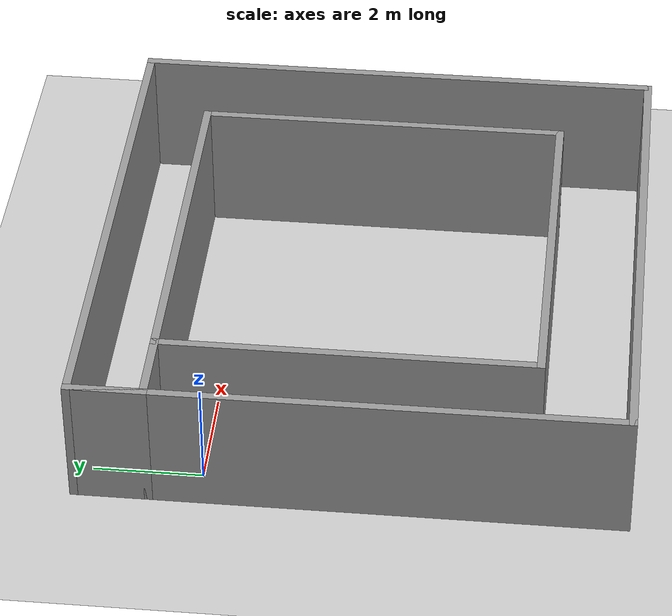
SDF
<sdf version="1.6">
 <world name="default">
  <light name="sun" type="directional">
   <pose>0 0 10 0 -0 0</pose>
   <diffuse>0.8 0.8 0.8 1</diffuse>
   <specular>0.1 0.1 0.1 1</specular>
   <attenuation>
    <range>1000</range>
    <constant>0.9</constant>
    <linear>0.01</linear>
    <quadratic>0.001</quadratic>
   </attenuation>
   <direction>-0.5 0.5 -1</direction>
  </light>
  <model name="ground_plane">
   <static>1</static>
   <link name="link">
    <collision name="collision">
     <geometry><plane><normal>0 0 1</normal><size>100 100</size></plane></geometry>
     <surface><friction><ode><mu>100</mu><mu2>50</mu2></ode></friction></surface>
    </collision>
    <visual name="visual">
     <cast_shadows>0</cast_shadows>
     <geometry><plane><normal>0 0 1</normal><size>100 100</size></plane></geometry>
     <material>
      <script><uri>file://media/materials/scripts/gazebo.material</uri><name>Gazebo/Grey</name></script>
     </material>
    </visual>
   </link>
  </model>
  <gravity>0 0 -9.8</gravity>
  <magnetic_field>6e-06 2.3e-05 -4.2e-05</magnetic_field>
  <atmosphere type="adiabatic"/>
  <physics name="default_physics" default="0" type="ode">
   <max_step_size>0.001</max_step_size>
   <real_time_factor>1</real_time_factor>
   <real_time_update_rate>1000</real_time_update_rate>
  </physics>
  <scene><ambient>0.4 0.4 0.4 1</ambient><background>0.7 0.7 0.7 1</background><shadows>1</shadows></scene>
  <spherical_coordinates>
   <surface_model>EARTH_WGS84</surface_model>
   <latitude_deg>0</latitude_deg>
   <longitude_deg>0</longitude_deg>
   <elevation>0</elevation>
   <heading_deg>0</heading_deg>
  </spherical_coordinates>
  <model name="sq_wall">
   <pose>4.29658 -2.68028 0 0 -0 0</pose>
   <link name="Wall_61">
    <collision name="Wall_61_Collision">
     <geometry><box><size>10 0.15 2.5</size></box></geometry>
     <pose>0 0 1.25 0 -0 0</pose>
    </collision>
    <visual name="Wall_61_Visual">
     <pose>0 0 1.25 0 -0 0</pose>
     <geometry><box><size>10 0.15 2.5</size></box></geometry>
     <material>
      <script><uri>file://media/materials/scripts/gazebo.material</uri><name>Gazebo/Grey</name></script>
      <ambient>1 1 1 1</ambient>
     </material>
    </visual>
    <pose>-4.925 0 0 0 0 -1.5708</pose>
   </link>
   <link name="Wall_62">
    <collision name="Wall_62_Collision">
     <geometry><box><size>10 0.15 2.5</size></box></geometry>
     <pose>0 0 1.25 0 -0 0</pose>
    </collision>
    <visual name="Wall_62_Visual">
     <pose>0 0 1.25 0 -0 0</pose>
     <geometry><box><size>10 0.15 2.5</size></box></geometry>
     <material>
      <script><uri>file://media/materials/scripts/gazebo.material</uri><name>Gazebo/Grey</name></script>
      <ambient>1 1 1 1</ambient>
     </material>
    </visual>
    <pose>0 -4.925 0 0 -0 0</pose>
   </link>
   <link name="Wall_63">
    <collision name="Wall_63_Collision">
     <geometry><box><size>10 0.15 2.5</size></box></geometry>
     <pose>0 0 1.25 0 -0 0</pose>
    </collision>
    <visual name="Wall_63_Visual">
     <pose>0 0 1.25 0 -0 0</pose>
     <geometry><box><size>10 0.15 2.5</size></box></geometry>
     <material>
      <script><uri>file://media/materials/scripts/gazebo.material</uri><name>Gazebo/Grey</name></script>
      <ambient>1 1 1 1</ambient>
     </material>
    </visual>
    <pose>4.925 0 0 0 -0 1.5708</pose>
   </link>
   <link name="Wall_64">
    <collision name="Wall_64_Collision">
     <geometry><box><size>10 0.15 2.5</size></box></geometry>
     <pose>0 0 1.25 0 -0 0</pose>
    </collision>
    <visual name="Wall_64_Visual">
     <pose>0 0 1.25 0 -0 0</pose>
     <geometry><box><size>10 0.15 2.5</size></box></geometry>
     <material>
      <script><uri>file://media/materials/scripts/gazebo.material</uri><name>Gazebo/Grey</name></script>
      <ambient>1 1 1 1</ambient>
     </material>
    </visual>
    <pose>0 4.925 0 0 -0 3.14159</pose>
   </link>
   <link name="Wall_65">
    <collision name="Wall_65_Collision">
     <geometry><box><size>1.5 0.15 2.5</size></box></geometry>
     <pose>0 0 1.25 0 -0 0</pose>
    </collision>
    <visual name="Wall_65_Visual">
     <pose>0 0 1.25 0 -0 0</pose>
     <geometry><box><size>1.5 0.15 2.5</size></box></geometry>
     <material>
      <script><uri>file://media/materials/scripts/gazebo.material</uri><name>Gazebo/Grey</name></script>
      <ambient>1 1 1 1</ambient>
     </material>
    </visual>
    <pose>-4.925 4.25 0 0 0 -1.5708</pose>
   </link>
   <link name="Wall_66">
    <collision name="Wall_66_Collision">
     <geometry><box><size>1.5 0.15 2.5</size></box></geometry>
     <pose>0 0 1.25 0 -0 0</pose>
    </collision>
    <visual name="Wall_66_Visual">
     <pose>0 0 1.25 0 -0 0</pose>
     <geometry><box><size>1.5 0.15 2.5</size></box></geometry>
     <material>
      <script><uri>file://media/materials/scripts/gazebo.material</uri><name>Gazebo/Grey</name></script>
      <ambient>1 1 1 1</ambient>
     </material>
    </visual>
    <pose>-4.25 3.575 0 0 -0 0</pose>
   </link>
   <link name="Wall_67">
    <collision name="Wall_67_Collision">
     <geometry><box><size>7 0.15 2.5</size></box></geometry>
     <pose>0 0 1.25 0 -0 0</pose>
    </collision>
    <visual name="Wall_67_Visual">
     <pose>0 0 1.25 0 -0 0</pose>
     <geometry><box><size>7 0.15 2.5</size></box></geometry>
     <material>
      <script><uri>file://media/materials/scripts/gazebo.material</uri><name>Gazebo/Grey</name></script>
      <ambient>1 1 1 1</ambient>
     </material>
    </visual>
    <pose>-3.575 0.15 0 0 0 -1.5708</pose>
   </link>
   <link name="Wall_68">
    <collision name="Wall_68_Collision">
     <geometry><box><size>7 0.15 2.5</size></box></geometry>
     <pose>0 0 1.25 0 -0 0</pose>
    </collision>
    <visual name="Wall_68_Visual">
     <pose>0 0 1.25 0 -0 0</pose>
     <geometry><box><size>7 0.15 2.5</size></box></geometry>
     <material>
      <script><uri>file://media/materials/scripts/gazebo.material</uri><name>Gazebo/Grey</name></script>
      <ambient>1 1 1 1</ambient>
     </material>
    </visual>
    <pose>-0.15 -3.275 0 0 -0 0</pose>
   </link>
   <link name="Wall_69">
    <collision name="Wall_69_Collision">
     <geometry><box><size>7 0.15 2.5</size></box></geometry>
     <pose>0 0 1.25 0 -0 0</pose>
    </collision>
    <visual name="Wall_69_Visual">
     <pose>0 0 1.25 0 -0 0</pose>
     <geometry><box><size>7 0.15 2.5</size></box></geometry>
     <material>
      <script><uri>file://media/materials/scripts/gazebo.material</uri><name>Gazebo/Grey</name></script>
      <ambient>1 1 1 1</ambient>
     </material>
    </visual>
    <pose>3.275 0.15 0 0 -0 1.5708</pose>
   </link>
   <link name="Wall_70">
    <collision name="Wall_70_Collision">
     <geometry><box><size>7 0.15 2.5</size></box></geometry>
     <pose>0 0 1.25 0 -0 0</pose>
    </collision>
    <visual name="Wall_70_Visual">
     <pose>0 0 1.25 0 -0 0</pose>
     <geometry><box><size>7 0.15 2.5</size></box></geometry>
     <material>
      <script><uri>file://media/materials/scripts/gazebo.material</uri><name>Gazebo/Grey</name></script>
      <ambient>1 1 1 1</ambient>
     </material>
    </visual>
    <pose>-0.15 3.575 0 0 -0 3.14159</pose>
   </link>
   <static>1</static>
  </model>
 </world>
</sdf>
